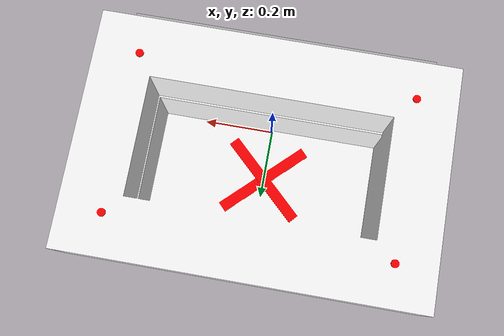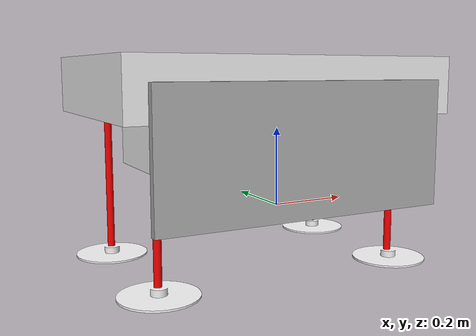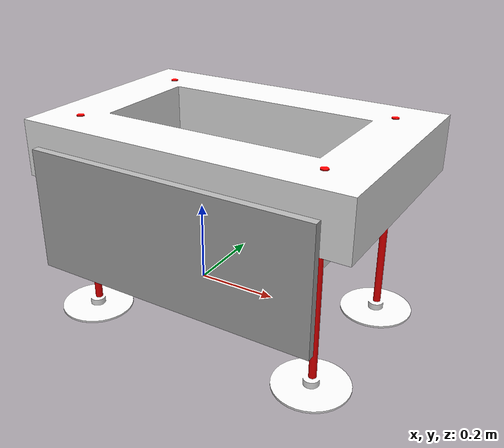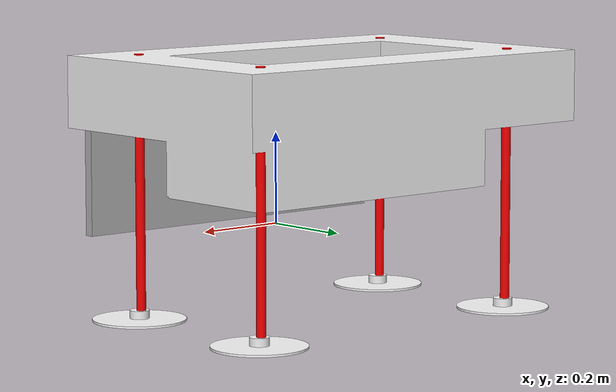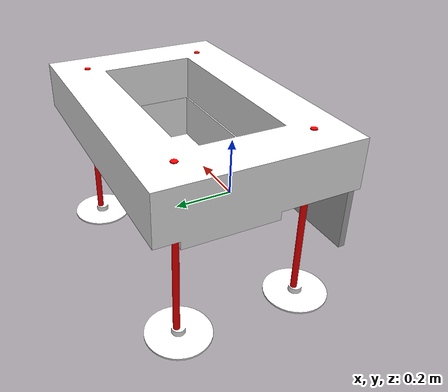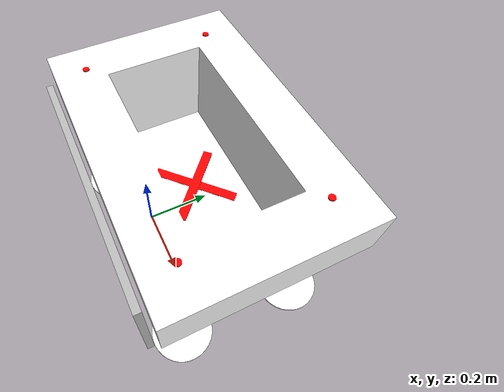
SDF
<?xml version='1.0'?>
<sdf version='1.7'>
  <model name='plastic_bin'>
    <model name='bin_4_dropping_task'>
      <link name='bin'>
        <pose>0 0 0.1 0 -0 0</pose>
        <collision name='bin_collision'>
          <geometry>
            <mesh>
              <uri>model://bin_4_dropping_task/meshes/bin_4_dropping_task.dae</uri>
            </mesh>
          </geometry>
        </collision>
        <visual name='bin_visual'>
          <geometry>
            <mesh>
              <uri>model://bin_4_dropping_task/meshes/bin_4_dropping_task.dae</uri>
            </mesh>
          </geometry>
        </visual>
      </link>
      <static>1</static>
      <pose>0.001973 0.157554 -0.15862 0 -0 0</pose>
    </model>
    <model name='plastic_label'>
      <link name='link_0'>
        <inertial>
          <mass>0.00537819</mass>
          <inertia>
            <ixx>4.91369e-05</ixx>
            <ixy>0</ixy>
            <ixz>0</ixz>
            <iyy>0.000322519</iyy>
            <iyz>0</iyz>
            <izz>0.000273773</izz>
          </inertia>
          <pose>0 0 0 0 -0 0</pose>
        </inertial>
        <pose>-0 1e-06 0 0 -0 0</pose>
        <visual name='visual'>
          <pose>0 0 0 0 -0 0</pose>
          <geometry>
            <box>
              <size>0.781291 0.020861 0.330455</size>
            </box>
          </geometry>
          <material>
            <lighting>1</lighting>
            <script>
              <uri>model://plastic_label/materials/scripts</uri>
              <uri>model://plastic_label/materials/textures</uri>
              <name>Plastic_label/Plastic_label</name>
            </script>
            <shader type='pixel'/>
          </material>
          <transparency>0</transparency>
          <cast_shadows>1</cast_shadows>
        </visual>
        <collision name='collision'>
          <laser_retro>0</laser_retro>
          <max_contacts>10</max_contacts>
          <pose>0 0 0 0 -0 0</pose>
          <geometry>
            <box>
              <size>0.781291 0.020861 0.330455</size>
            </box>
          </geometry>
          <surface>
            <friction>
              <ode>
                <mu>1</mu>
                <mu2>1</mu2>
                <fdir1>0 0 0</fdir1>
                <slip1>0</slip1>
                <slip2>0</slip2>
              </ode>
              <torsional>
                <coefficient>1</coefficient>
                <patch_radius>0</patch_radius>
                <surface_radius>0</surface_radius>
                <use_patch_radius>1</use_patch_radius>
                <ode>
                  <slip>0</slip>
                </ode>
              </torsional>
            </friction>
            <bounce>
              <restitution_coefficient>0</restitution_coefficient>
              <threshold>1e+06</threshold>
            </bounce>
            <contact>
              <collide_without_contact>0</collide_without_contact>
              <collide_without_contact_bitmask>1</collide_without_contact_bitmask>
              <collide_bitmask>1</collide_bitmask>
              <ode>
                <soft_cfm>0</soft_cfm>
                <soft_erp>0.2</soft_erp>
                <kp>1e+13</kp>
                <kd>1</kd>
                <max_vel>0.01</max_vel>
                <min_depth>0</min_depth>
              </ode>
              <bullet>
                <split_impulse>1</split_impulse>
                <split_impulse_penetration_threshold>-0.01</split_impulse_penetration_threshold>
                <soft_cfm>0</soft_cfm>
                <soft_erp>0.2</soft_erp>
                <kp>1e+13</kp>
                <kd>1</kd>
              </bullet>
            </contact>
          </surface>
        </collision>
      </link>
      <static>1</static>
      <allow_auto_disable>1</allow_auto_disable>
      <pose>-0.001972 -0.157554 0.158619 0 -0 0</pose>
    </model>
    <joint name='bin_JOINT_0' type='fixed'>
      <parent>bin_4_dropping_task::bin</parent>
      <child>plastic_label::link_0</child>
      <pose>0 0 0 0 -0 0</pose>
      <physics>
        <ode>
          <limit>
            <cfm>0</cfm>
            <erp>0.2</erp>
          </limit>
          <suspension>
            <cfm>0</cfm>
            <erp>0.2</erp>
          </suspension>
        </ode>
      </physics>
    </joint>
    <static>0</static>
    <allow_auto_disable>1</allow_auto_disable>
  </model>
</sdf>
